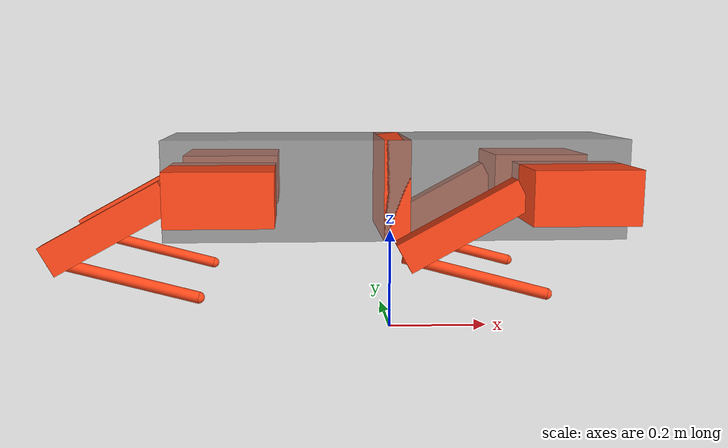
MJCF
<mujoco model="ngr_simple">
  <default>
    <default class="robot">
      <default class="motor">
        <joint />
        <motor />
      </default>
      <default class="visual">
        <geom material="visualgeom" contype="0" conaffinity="0" group="2" />
      </default>
      <default class="collision">
        <geom material="collision_material" condim="3" contype="0" conaffinity="1" priority="1" group="1" solref="0.005 1" solimp="0.99 0.999 1e-05" friction="1 0.01 0.01" />
      </default>
    </default>
  </default>

  <compiler angle="radian" />

  <asset>
    <material name="gray" rgba="0.5 0.5 0.5 0.7" />
    <material name="black" rgba="0.0 0.0 0.0 0.7" />
    <material name="blue" rgba="0 0 0.8 0.8" />
    <material name="red" rgba="0.8 0.0 0.2 0.8" />
    <material name="purple" rgba="0.5 0.0 0.5 0.8" />
    <material name="green" rgba="0.0 1.0 0.0 0.8" />
    <material name="default_material" rgba="0.7 0.7 0.7 1" />
    <material name="collision_material" rgba="1.0 0.28 0.1 0.9" />
  </asset>

  <worldbody>
    <body name="body" pos="0.00000000 0.00000000 0.29584766" quat="1 0 0 0" childclass="robot">
      <freejoint name="floating_base" />
      <geom name="body_collision" pos="0 0 0" quat="1 0 0 0" type="box" size="0.025 0.125 0.095" class="collision" />
      <geom name="body_visual" pos="0 0 0" quat="1.0 0.0 0.0 0.0" material="gray" type="box" size="0.44 0.125 0.095" class="visual" />
      <body name="hip0" pos="0.325 0.1575 0" quat="1.0 0.0 0.0 0.0">
        <joint name="8" type="hinge" ref="0.0" class="motor" axis="1 0 0" />
        <inertial mass="2.75" diaginertia="0.00891458 0.0100573 0.01533698" />
        <geom name="hip0_collision" pos="0.0 0 0" quat="1.0 0.0 0.0 0.0" type="box" size="0.0975 0.085 0.05" class="collision" />
        <geom name="hip0_visual" pos="0.0 0 0" quat="1.0 0.0 0.0 0.0" material="red" type="box" size="0.0975 0.085 0.05" class="visual" />
        <body name="upper0" pos="-.0975 0 0" quat="0.9689124217106447 0.0 -0.24740395925452294 0.0">
          <joint name="0" type="hinge" ref="0.0" class="motor" axis="0 -1 0" />
          <inertial pos="-0.125 0 0" quat="1.0 0.0 0.0 0.0" mass="0.625" diaginertia="0.0003125 0.0040625 0.0040625" />
          <geom name="upper0_collision" pos="-0.125 0 0" quat="1.0 0.0 0.0 0.0" type="box" size="0.125 0.022 0.03" class="collision" />
          <geom name="upper0_visual" pos="-0.125 0.0 0" quat="1.0 0.0 0.0 0.0" material="blue" type="box" size="0.125 0.022 0.03" class="visual" />
          <body name="lower0" pos="-0.25 0 0" quat="0.9286646355765102 0.0 0.3709204694129827 0.0">
            <joint name="1" type="hinge" ref="0.0" class="motor" axis="0 1 0" />
            <inertial pos="0.14 0 0" quat="1.0 0.0 0.0 0.0" mass="0.2" diaginertia="1.21e-05 0.0013127167 0.0013127167" />
            <geom name="lower0_collision_0" pos="0.14 0 0" quat="0.7071067811847432 0.0 0.7071067811883519 0.0" type="cylinder" size="0.011 0.14" class="collision" />
            <geom name="lower0_collision_1" pos="0.28 0 0" quat="0.7071067811847432 0.0 0.7071067811883519 0.0" type="sphere" size="0.011" class="collision" />
            <geom name="lower0_visual_0" pos="0.14 0 0" quat="0.7071067811847432 0.0 0.7071067811883519 0.0" material="black" type="cylinder" size="0.011 0.14" class="visual" />
            <geom name="lower0_visual_1" pos="0.28 0 0" quat="0.7071067811847432 0.0 0.7071067811883519 0.0" material="green" type="sphere" size="0.011" class="visual" />
          </body>
        </body>
      </body>
      <body name="hip1" pos="-0.325 0.1575 0" quat="1.0 0.0 0.0 0.0">
        <joint name="9" type="hinge" ref="0.0" class="motor" axis="1 0 0" />
        <inertial mass="2.75" diaginertia="0.00891458 0.0100573 0.01533698" />
        <geom name="hip1_collision" pos="0.0 0 0" quat="1.0 0.0 0.0 0.0" type="box" size="0.0975 0.085 0.05" class="collision" />
        <geom name="hip1_visual" pos="0.0 0 0" quat="1.0 0.0 0.0 0.0" material="purple" type="box" size="0.0975 0.085 0.05" class="visual" />
        <body name="upper1" pos="-.0975 0 0" quat="0.9689124217106447 0.0 -0.24740395925452294 0.0">
          <joint name="2" type="hinge" ref="0.0" class="motor" axis="0 -1 0" />
          <inertial pos="-0.125 0 0" quat="1.0 0.0 0.0 0.0" mass="0.625" diaginertia="0.0003125 0.0040625 0.0040625" />
          <geom name="upper1_collision" pos="-0.125 0 0" quat="1.0 0.0 0.0 0.0" type="box" size="0.125 0.022 0.03" class="collision" />
          <geom name="upper1_visual" pos="-0.125 0.0 0" quat="1.0 0.0 0.0 0.0" material="blue" type="box" size="0.125 0.022 0.03" class="visual" />
          <body name="lower1" pos="-0.25 0 0" quat="0.9286646355765102 0.0 0.3709204694129827 0.0">
            <joint name="3" type="hinge" ref="0.0" class="motor" axis="0 1 0" />
            <inertial pos="0.14 0 0" quat="1.0 0.0 0.0 0.0" mass="0.2" diaginertia="1.21e-05 0.0013127167 0.0013127167" />
            <geom name="lower1_collision_0" pos="0.14 0 0" quat="0.7071067811847432 0.0 0.7071067811883519 0.0" type="cylinder" size="0.011 0.14" class="collision" />
            <geom name="lower1_collision_1" pos="0.28 0 0" quat="0.7071067811847432 0.0 0.7071067811883519 0.0" type="sphere" size="0.011" class="collision" />
            <geom name="lower1_visual_0" pos="0.14 0 0" quat="0.7071067811847432 0.0 0.7071067811883519 0.0" material="black" type="cylinder" size="0.011 0.14" class="visual" />
            <geom name="lower1_visual_1" pos="0.28 0 0" quat="0.7071067811847432 0.0 0.7071067811883519 0.0" material="green" type="sphere" size="0.011" class="visual" />
          </body>
        </body>
      </body>
      <body name="hip2" pos="0.325 -0.1575 0" quat="1.0 0.0 0.0 0.0">
        <joint name="10" type="hinge" ref="0.0" class="motor" axis="1 0 0" />
        <inertial mass="2.75" diaginertia="0.00891458 0.0100573 0.01533698" />
        <geom name="hip2_collision" pos="0.0 0 0" quat="1.0 0.0 0.0 0.0" type="box" size="0.0975 0.085 0.05" class="collision" />
        <geom name="hip2_visual" pos="0.0 0 0" quat="1.0 0.0 0.0 0.0" material="red" type="box" size="0.0975 0.085 0.05" class="visual" />
        <body name="upper2" pos="-.0975 0 0" quat="0.9689124217106447 0.0 -0.24740395925452294 0.0">
          <joint name="4" type="hinge" ref="0.0" class="motor" axis="0 -1 0" />
          <inertial pos="-0.125 0 0" quat="1.0 0.0 0.0 0.0" mass="0.625" diaginertia="0.0003125 0.0040625 0.0040625" />
          <geom name="upper2_collision" pos="-0.125 0 0" quat="1.0 0.0 0.0 0.0" type="box" size="0.125 0.022 0.03" class="collision" />
          <geom name="upper2_visual" pos="-0.125 0.0 0" quat="1.0 0.0 0.0 0.0" material="blue" type="box" size="0.125 0.022 0.03" class="visual" />
          <body name="lower2" pos="-0.25 0 0" quat="0.9286646355765102 0.0 0.3709204694129827 0.0">
            <joint name="5" type="hinge" ref="0.0" class="motor" axis="0 1 0" />
            <inertial pos="0.14 0 0" quat="1.0 0.0 0.0 0.0" mass="0.2" diaginertia="1.21e-05 0.0013127167 0.0013127167" />
            <geom name="lower2_collision_0" pos="0.14 0 0" quat="0.7071067811847432 0.0 0.7071067811883519 0.0" type="cylinder" size="0.011 0.14" class="collision" />
            <geom name="lower2_collision_1" pos="0.28 0 0" quat="0.7071067811847432 0.0 0.7071067811883519 0.0" type="sphere" size="0.011" class="collision" />
            <geom name="lower2_visual_0" pos="0.14 0 0" quat="0.7071067811847432 0.0 0.7071067811883519 0.0" material="black" type="cylinder" size="0.011 0.14" class="visual" />
            <geom name="lower2_visual_1" pos="0.28 0 0" quat="0.7071067811847432 0.0 0.7071067811883519 0.0" material="green" type="sphere" size="0.011" class="visual" />
          </body>
        </body>
      </body>
      <body name="hip3" pos="-0.325 -0.1575 0" quat="1.0 0.0 0.0 0.0">
        <joint name="11" type="hinge" ref="0.0" class="motor" axis="1 0 0" />
        <inertial mass="2.75" diaginertia="0.00891458 0.0100573 0.01533698" />
        <geom name="hip3_collision" pos="0.0 0 0" quat="1.0 0.0 0.0 0.0" type="box" size="0.0975 0.085 0.05" class="collision" />
        <geom name="hip3_visual" pos="0.0 0 0" quat="1.0 0.0 0.0 0.0" material="purple" type="box" size="0.0975 0.085 0.05" class="visual" />
        <body name="upper3" pos="-.0975 0 0" quat="0.9689124217106447 0.0 -0.24740395925452294 0.0">
          <joint name="6" type="hinge" ref="0.0" class="motor" axis="0 -1 0" />
          <inertial pos="-0.125 0 0" quat="1.0 0.0 0.0 0.0" mass="0.625" diaginertia="0.0003125 0.0040625 0.0040625" />
          <geom name="upper3_collision" pos="-0.125 0 0" quat="1.0 0.0 0.0 0.0" type="box" size="0.125 0.022 0.03" class="collision" />
          <geom name="upper3_visual" pos="-0.125 0.0 0" quat="1.0 0.0 0.0 0.0" material="blue" type="box" size="0.125 0.022 0.03" class="visual" />
          <body name="lower3" pos="-0.25 0 0" quat="0.9286646355765102 0.0 0.3709204694129827 0.0">
            <joint name="7" type="hinge" ref="0.0" class="motor" axis="0 1 0" />
            <inertial pos="0.14 0 0" quat="1.0 0.0 0.0 0.0" mass="0.2" diaginertia="1.21e-05 0.0013127167 0.0013127167" />
            <geom name="lower3_collision_0" pos="0.14 0 0" quat="0.7071067811847432 0.0 0.7071067811883519 0.0" type="cylinder" size="0.011 0.14" class="collision" />
            <geom name="lower3_collision_1" pos="0.28 0 0" quat="0.7071067811847432 0.0 0.7071067811883519 0.0" type="sphere" size="0.011" class="collision" />
            <geom name="lower3_visual_0" pos="0.14 0 0" quat="0.7071067811847432 0.0 0.7071067811883519 0.0" material="black" type="cylinder" size="0.011 0.14" class="visual" />
            <geom name="lower3_visual_1" pos="0.28 0 0" quat="0.7071067811847432 0.0 0.7071067811883519 0.0" material="green" type="sphere" size="0.011" class="visual" />
          </body>
        </body>
      </body>
      <site name="body_site" pos="0 0 0" quat="1 0 0 0" />
      <camera name="front_camera" mode="track" fovy="90.0" quat="4.329780281177467e-17 4.329780281177466e-17 0.7071067811865475 0.7071067811865476" pos="0.0 2.0 0.5" />
      <camera name="side_camera" mode="track" fovy="90.0" quat="-0.5 -0.4999999999999999 0.5 0.5000000000000001" pos="-2.0 0.0 0.5" />
    </body>
  </worldbody>

  <actuator>
    <motor name="8_ctrl" joint="8" class="motor" />
    <motor name="0_ctrl" joint="0" class="motor" />
    <motor name="1_ctrl" joint="1" class="motor" />
    <motor name="9_ctrl" joint="9" class="motor" />
    <motor name="2_ctrl" joint="2" class="motor" />
    <motor name="3_ctrl" joint="3" class="motor" />
    <motor name="10_ctrl" joint="10" class="motor" />
    <motor name="4_ctrl" joint="4" class="motor" />
    <motor name="5_ctrl" joint="5" class="motor" />
    <motor name="11_ctrl" joint="11" class="motor" />
    <motor name="6_ctrl" joint="6" class="motor" />
    <motor name="7_ctrl" joint="7" class="motor" />
  </actuator>

  <contact>
    <exclude body1="body" body2="hip0" />
    <exclude body1="hip0" body2="upper0" />
    <exclude body1="upper0" body2="lower0" />
    <exclude body1="body" body2="hip1" />
    <exclude body1="hip1" body2="upper1" />
    <exclude body1="upper1" body2="lower1" />
    <exclude body1="body" body2="hip2" />
    <exclude body1="hip2" body2="upper2" />
    <exclude body1="upper2" body2="lower2" />
    <exclude body1="body" body2="hip3" />
    <exclude body1="hip3" body2="upper3" />
    <exclude body1="upper3" body2="lower3" />
  </contact>

  <sensor>
    <framepos name="body_site_pos" objtype="site" objname="body_site" />
    <framequat name="body_site_quat" objtype="site" objname="body_site" />
    <framelinvel name="body_site_linvel" objtype="site" objname="body_site" />
    <frameangvel name="body_site_angvel" objtype="site" objname="body_site" />
    <velocimeter name="body_site_vel" site="body_site" />
  </sensor>
</mujoco>
